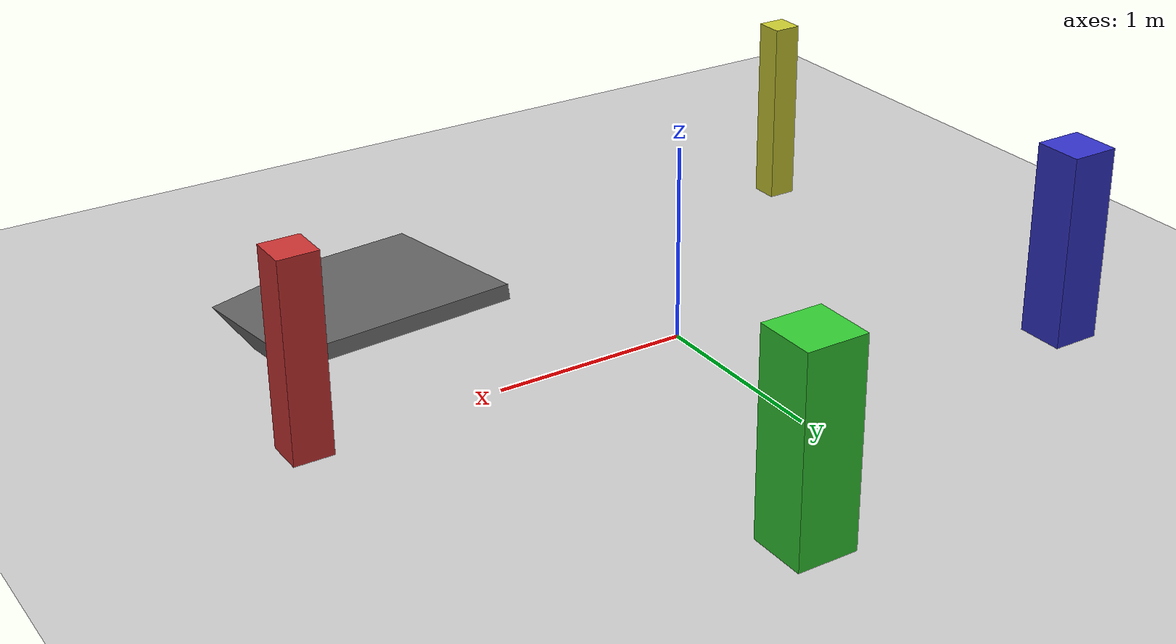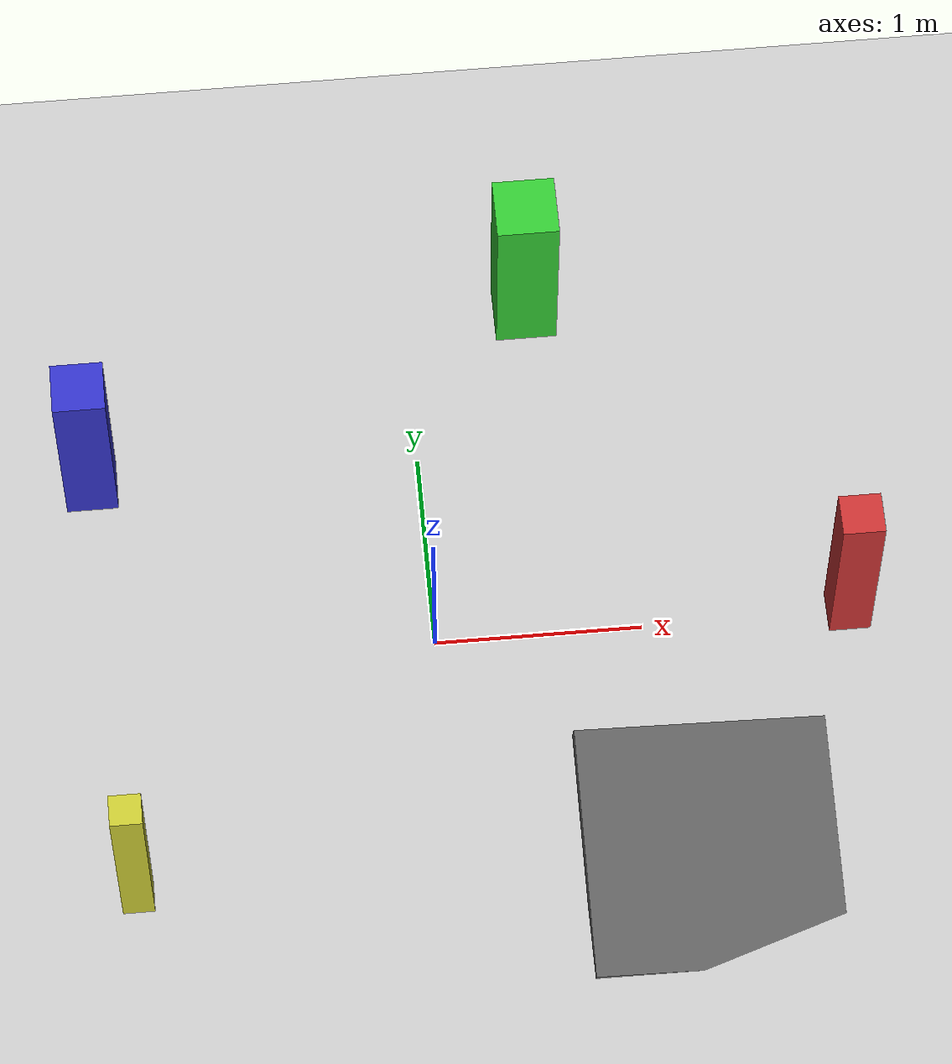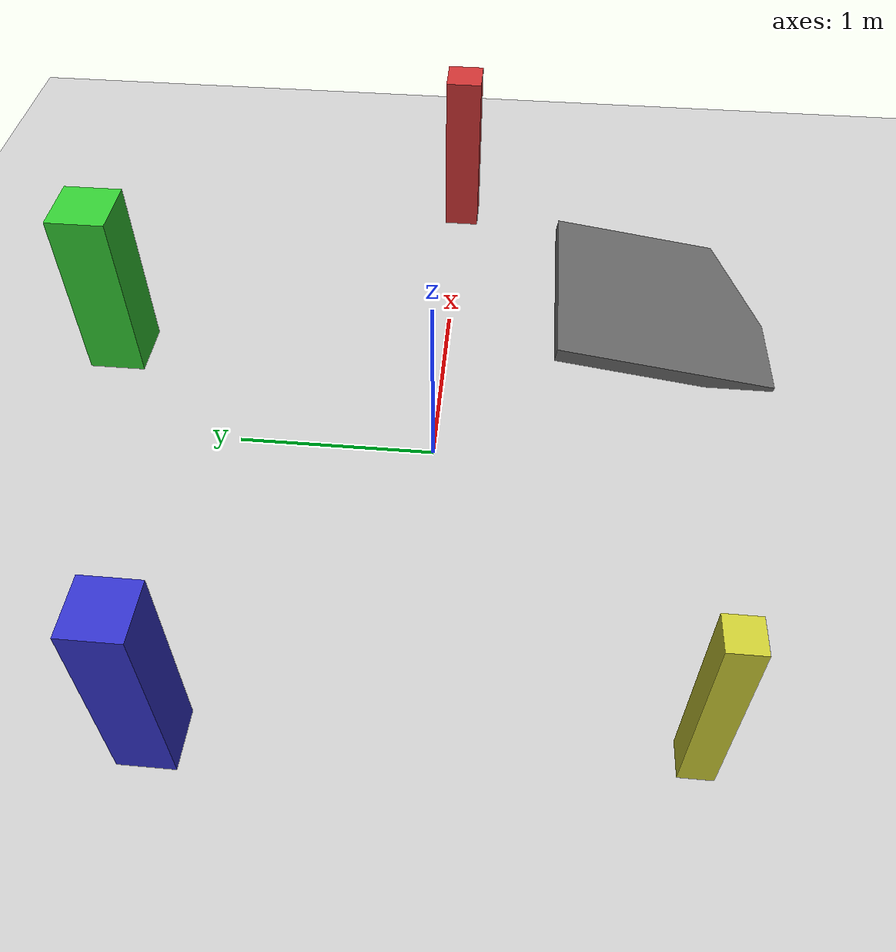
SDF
<?xml version="1.0" ?>
<sdf version="1.6">
  <world name="default">

    <plugin name="gazebo_ros_state" filename="libgazebo_ros_state.so"/>
    <gravity>0 0 -9.81</gravity>
    <include>
      <uri>model://sun</uri>
    </include>
    <include>
      <uri>model://ground_plane</uri>
    </include>

    <!-- Simple obstacles around the drone -->
    <model name="box_1">
      <static>true</static>
      <pose>2.0 0.0 0.5 0 0 0</pose>
      <link name="link">
        <collision name="collision">
          <geometry><box><size>0.2 0.2 1.0</size></box></geometry>
        </collision>
        <visual name="visual">
          <geometry><box><size>0.2 0.2 1.0</size></box></geometry>
          <material><ambient>0.8 0.2 0.2 1</ambient></material>
        </visual>
      </link>
    </model>

    <model name="box_2">
      <static>true</static>
      <pose>0.6 1.8 0.5 0 0 0</pose>
      <link name="link">
        <collision name="collision">
          <geometry><box><size>0.3 0.3 1.0</size></box></geometry>
        </collision>
        <visual name="visual">
          <geometry><box><size>0.3 0.3 1.0</size></box></geometry>
          <material><ambient>0.2 0.8 0.2 1</ambient></material>
        </visual>
      </link>
    </model>

    <model name="box_3">
      <static>true</static>
      <pose>-1.6 1.0 0.5 0 0 0</pose>
      <link name="link">
        <collision name="collision">
          <geometry><box><size>0.25 0.25 1.0</size></box></geometry>
        </collision>
        <visual name="visual">
          <geometry><box><size>0.25 0.25 1.0</size></box></geometry>
          <material><ambient>0.2 0.2 0.8 1</ambient></material>
        </visual>
      </link>
    </model>

    <model name="box_4">
      <static>true</static>
      <pose>-1.5 -1.2 0.5 0 0 0</pose>
      <link name="link">
        <collision name="collision">
          <geometry><box><size>0.15 0.15 1.0</size></box></geometry>
        </collision>
        <visual name="visual">
          <geometry><box><size>0.15 0.15 1.0</size></box></geometry>
          <material><ambient>0.8 0.8 0.2 1</ambient></material>
        </visual>
      </link>
    </model>

    <!-- Uneven landing patch -->
    <model name="landing_patch">
      <static>true</static>
      <pose>1.2 -1.2 0.04 0.15 0.05 0</pose>
      <link name="link">
        <collision name="collision">
          <geometry><box><size>1.2 1.2 0.08</size></box></geometry>
        </collision>
        <visual name="visual">
          <geometry><box><size>1.2 1.2 0.08</size></box></geometry>
          <material><ambient>0.4 0.4 0.4 1</ambient></material>
        </visual>
      </link>
    </model>
  </world>
</sdf>
